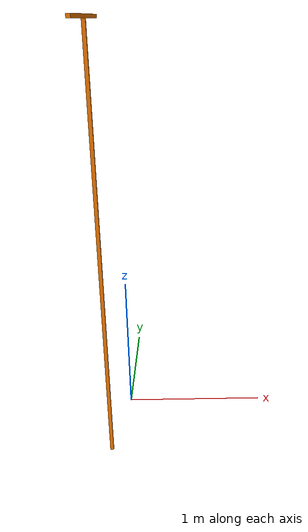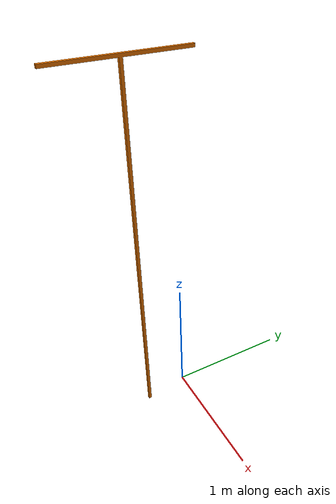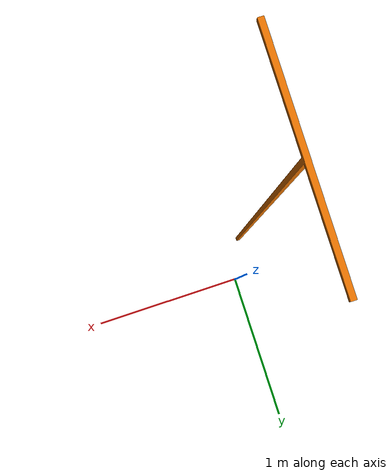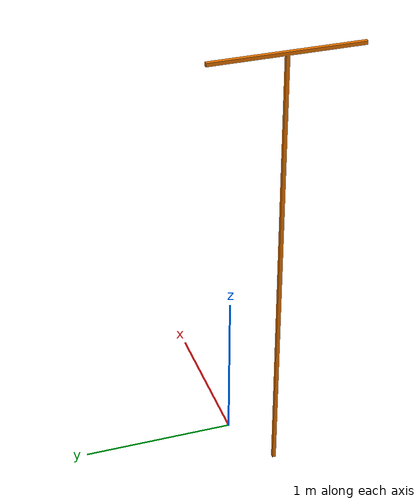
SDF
<?xml version="1.0" ?>
<sdf version="1.5">
  <model name="stand_gate">
    <static>true</static>
    <link name='link'>
      <collision name="collision">
        <geometry>
          <mesh>
            <uri>model://stand_gate/meshes/stand_gate.dae</uri>
            <scale>1 1 1</scale>
          </mesh>
        </geometry>
        <surface>
          <contact>
            <collide_bitmask>0xffff</collide_bitmask>
          </contact>
          <friction>
            <ode>
              <mu>100</mu>
              <mu2>50</mu2>
            </ode>
          </friction>
        </surface>
      </collision>
      <visual name='visual'>
        <geometry>
          <mesh>
            <uri>model://stand_gate/meshes/stand_gate.dae</uri>
            <scale>1 1 1</scale>
          </mesh>
        </geometry>
      </visual>
    </link>
  </model>
</sdf>
